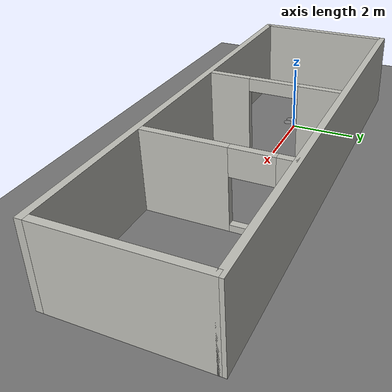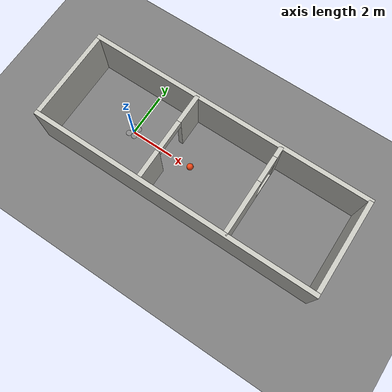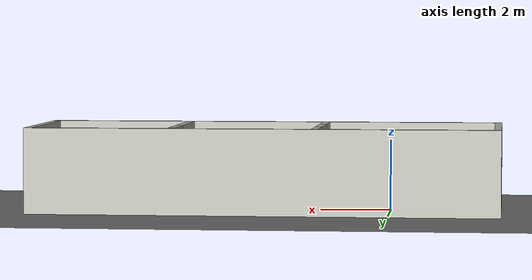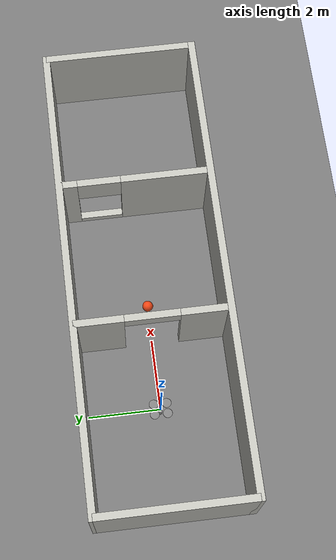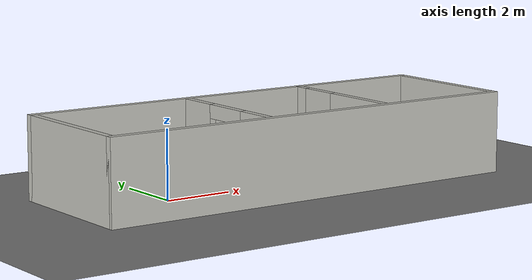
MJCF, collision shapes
<mujoco model="fly_drone_scene_m7">
  <include file="fly_drone_x2.xml"/>

  <statistic meansize=".05"/>

  <visual>
    <headlight diffuse="0.6 0.6 0.6" ambient="0.3 0.3 0.3" specular="0 0 0"/>
    <rgba haze="0.15 0.25 0.35 1"/>
    <global azimuth="-20" elevation="-20" ellipsoidinertia="true"/>
  </visual>

  <asset>
    <texture type="skybox" builtin="gradient" rgb1="0.3 0.5 0.7" rgb2="0 0 0" width="512" height="3072"/>
    <texture type="2d" name="groundplane" builtin="checker" mark="edge" rgb1="0.02 0.02 0.02" rgb2="0.9 0.9 0.9"
      markrgb="0.5 0.5 0.5" width="300" height="300"/>
    <material name="groundplane" texture="groundplane" texuniform="true" texrepeat="20 20" reflectance="0.1"/>

    <material name="attractant_material" rgba="0.92 0.27 0.08 1" emission="0.6" specular="0.3" shininess="0.4"/>

    <material name="wall_material" rgba="0.75 0.75 0.72 1" specular="0.05" shininess="0.05"/>
  </asset>

  <worldbody>
    <light pos="0 0 1.5" dir="0 0 -1" directional="true"/>
    <light pos="4 0 1.5" dir="0 0 -1" directional="true"/>
    <light pos="8 0 1.5" dir="0 0 -1" directional="true"/>
    <geom name="floor" size="0 0 0.05" type="plane" material="groundplane"/>

    <!-- Back wall (closes Room 1, x=-3.0) -->
    <geom name="wall_back" type="box" pos="-3.0 0 1.2" size="0.1 2.1 1.2" material="wall_material"/>
    <!-- Front wall (closes Room 3, x=10.0 - end of the house) -->
    <geom name="wall_front" type="box" pos="10.0 0 1.2" size="0.1 2.1 1.2" material="wall_material"/>
    <!-- Side walls (y=-2.1 / y=+2.1), full house length -->
    <geom name="wall_side_neg_y" type="box" pos="3.5 -2.1 1.2" size="6.6 0.1 1.2" material="wall_material"/>
    <geom name="wall_side_pos_y" type="box" pos="3.5 2.1 1.2" size="6.6 0.1 1.2" material="wall_material"/>

    <geom name="wall_door_left" type="box" pos="2.0 -1.425 1.2" size="0.1 0.675 1.2" material="wall_material"/>
    <geom name="wall_door_right" type="box" pos="2.0 1.425 1.2" size="0.1 0.675 1.2" material="wall_material"/>
    <geom name="wall_door_header" type="box" pos="2.0 0 2.2" size="0.1 0.75 0.2" material="wall_material"/>

    <geom name="wall_window_left" type="box" pos="6.0 -0.85 1.2" size="0.1 1.25 1.2" material="wall_material"/>
    <geom name="wall_window_right" type="box" pos="6.0 1.85 1.2" size="0.1 0.25 1.2" material="wall_material"/>
    <geom name="wall_window_sill" type="box" pos="6.0 1.0 0.1" size="0.1 0.6 0.1" material="wall_material"/>
    <geom name="wall_window_header" type="box" pos="6.0 1.0 2.0" size="0.1 0.6 0.4" material="wall_material"/>

    <body name="attractant_target" pos="3.0 0 0.15" gravcomp="1">
      <freejoint/>
      <geom name="attractant_target_geom" type="sphere" size="0.15" material="attractant_material"
            contype="0" conaffinity="0"/>
    </body>
  </worldbody>
</mujoco>

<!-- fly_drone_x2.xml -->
<mujoco model="Skydio X2">
  <compiler autolimits="true" assetdir="assets"/>

  <option timestep="0.01" density="1.225" viscosity="1.8e-5"/>

  <default>
    <default class="x2">
      <geom mass="0"/>
      <motor ctrlrange="0 13"/>
      <mesh scale="0.01 0.01 0.01"/>
      <default class="visual">
        <geom group="2" type="mesh" contype="0" conaffinity="0"/>
      </default>
      <default class="collision">
        <geom group="3" type="box"/>
        <default class="rotor">
          <geom type="ellipsoid" size=".13 .13 .01"/>
        </default>
      </default>
      <site group="5"/>
    </default>
  </default>

  <asset>
    <texture type="2d" file="X2_lowpoly_texture_SpinningProps_1024.png"/>
    <material name="phong3SG" texture="X2_lowpoly_texture_SpinningProps_1024"/>
    <material name="invisible" rgba="0 0 0 0"/>

    <mesh class="x2" file="X2_lowpoly.obj"/>
  </asset>

  <worldbody>
    <light name="spotlight" mode="targetbodycom" target="x2" pos="0 -1 2"/>
    <body name="x2" pos="0 0 0.1" childclass="x2">
      <freejoint/>
      <!-- CHANGED from x2.xml: added resolution="640 480" (see file header). -->
      <camera name="track" pos="-1 0 .5" xyaxes="0 -1 0 1 0 2" mode="trackcom" resolution="640 480"/>
      <camera name="nose_cam" pos="0.15 0 0.0" xyaxes="0 -1 0 0.30 0 0.95" resolution="640 480"/>
      <site name="imu" pos="0 0 .02"/>
      <geom material="phong3SG" mesh="X2_lowpoly" class="visual" quat="0 0 1 1"/>
      <geom class="collision" size=".06 .027 .02" pos=".04 0 .02"/>
      <geom class="collision" size=".06 .027 .02" pos=".04 0 .06"/>
      <geom class="collision" size=".05 .027 .02" pos="-.07 0 .065"/>
      <geom class="collision" size=".023 .017 .01" pos="-.137 .008 .065" quat="1 0 0 1"/>
      <geom name="rotor1" class="rotor" pos="-.14 -.18 .05" mass=".25"/>
      <geom name="rotor2" class="rotor" pos="-.14 .18 .05" mass=".25"/>
      <geom name="rotor3" class="rotor" pos=".14 .18 .08" mass=".25"/>
      <geom name="rotor4" class="rotor" pos=".14 -.18 .08" mass=".25"/>
      <geom size=".16 .04 .02" pos="0 0 0.02" type="ellipsoid" mass=".325" class="visual" material="invisible"/>
      <site name="thrust1" pos="-.14 -.18 .05"/>
      <site name="thrust2" pos="-.14 .18 .05"/>
      <site name="thrust3" pos=".14 .18 .08"/>
      <site name="thrust4" pos=".14 -.18 .08"/>
    </body>
  </worldbody>

  <actuator>
    <motor class="x2" name="thrust1" site="thrust1" gear="0 0 1 0 0 -.0201"/>
    <motor class="x2" name="thrust2" site="thrust2" gear="0 0 1 0 0 .0201"/>
    <motor class="x2" name="thrust3" site="thrust3" gear="0 0 1 0 0 -.0201"/>
    <motor class="x2" name="thrust4" site="thrust4" gear="0 0 1 0 0 .0201"/>
  </actuator>

  <sensor>
    <gyro name="body_gyro" site="imu"/>
    <accelerometer name="body_linacc" site="imu"/>
    <framequat name="body_quat" objtype="site" objname="imu"/>
  </sensor>

  <keyframe>
    <key name="hover" qpos="0 0 .3 1 0 0 0" ctrl="3.2495625 3.2495625 3.2495625 3.2495625"/>
  </keyframe>
</mujoco>
